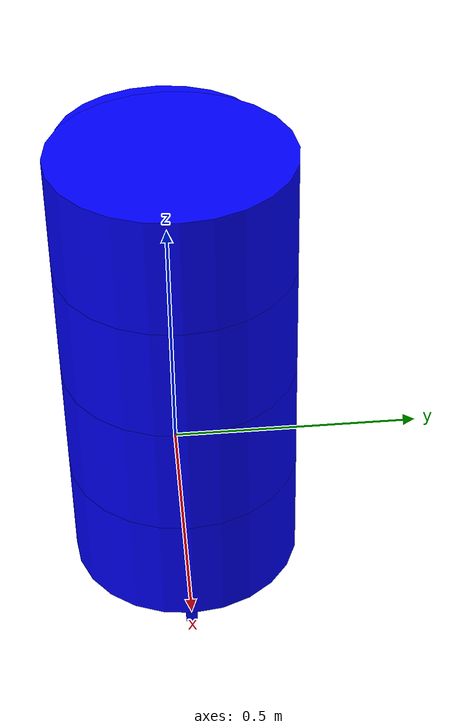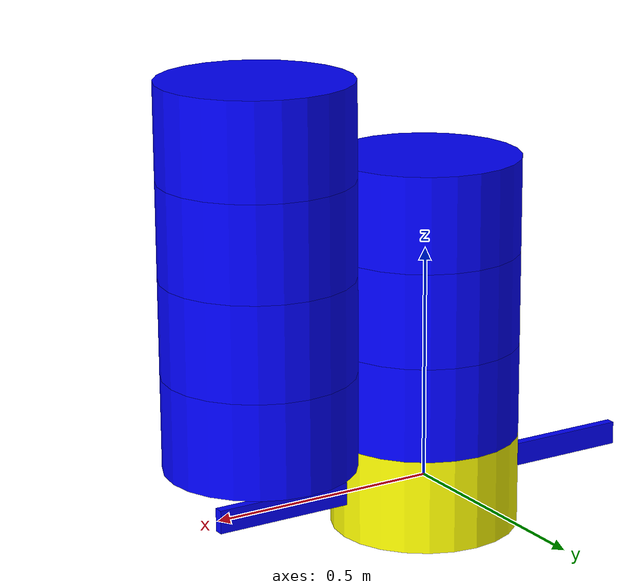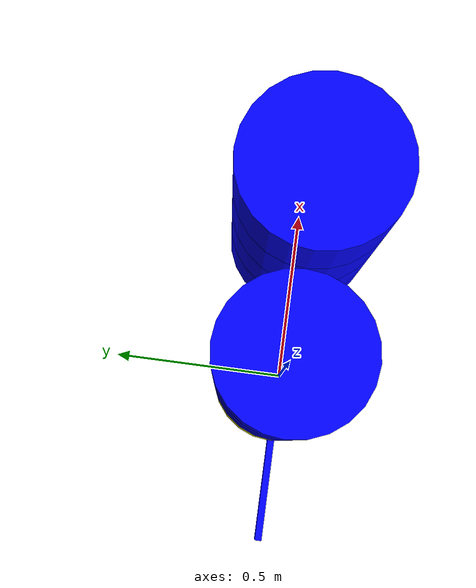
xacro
<?xml version="1.0"?>

<robot name="kukaibra800" xmlns:xacro="http://wiki.ros.org/xacro">
    <xacro:include filename="$(find ros_kuka)/urdf/kukaibra800macro.xacro" />

			<xacro:kuka_tilt_link name="l0">
			<geometry>
				<box size="1 0.02 0.05"/>
			</geometry>
			<origin xyz="0 0 0" rpy="0 0 0"/>
		</xacro:kuka_tilt_link>

	<xacro:kuka_joint
			name="j0"
			type="prismatic"
			parent="l0"
			child="base_link"
			rangeup ="-0.5"
			rangelow="0.5"
			limit="176"
			velocity="98">
			<origin xyz="0 0 0" />
			<axis xyz="1 0 0"/>
		</xacro:kuka_joint>

	<xacro:base_link_macro
			base_link_name="base_link">
		</xacro:base_link_macro>

		<xacro:kuka_joint
			name="j1"
			type="revolute"
			parent="base_link"
			child="l1"
			rangeup ="+2.96"
			rangelow="-2.96"
			limit="176"
			velocity="98">
			<origin xyz="0 0 0.2" />
			<axis xyz="0 0 1"/>
		</xacro:kuka_joint>

		<xacro:kuka_tilt_link name="l1">
			<geometry>
				<cylinder length="0.2" radius="0.2"/>
			</geometry>
			<origin xyz="0 0 0" rpy="0 0 0"/>
		</xacro:kuka_tilt_link>

		<xacro:kuka_joint
			name="j2"
			type="revolute"
			parent="l1"
			child="l2"
			rangeup ="+2.09"
			rangelow="-2.09"
			limit="176"
			velocity="98">
			<origin xyz="0.4 0 0" />
			<axis xyz="1 0 0"/>
		</xacro:kuka_joint>

		<xacro:kuka_tilt_link name="l2">
			<geometry>
				<cylinder length="0.2" radius="0.2"/>
			</geometry>
			<origin xyz="0 0 0" rpy="0 0 0"/>
		</xacro:kuka_tilt_link>

		<xacro:kuka_joint
			name="j3"
			type="revolute"
			parent="l2"
			child="l3"
			rangeup ="+2.96"
			rangelow="-2.96"
			limit="110"
			velocity="100">
			<origin xyz="0 0 0.2" />
			<axis xyz="0 0 1"/>
		</xacro:kuka_joint>

		<xacro:kuka_tilt_link name="l3">
			<geometry>
				<cylinder length="0.2" radius="0.2"/>
			</geometry>
			<origin xyz="0 0 0" rpy="0 0 0"/>
		</xacro:kuka_tilt_link>

		<xacro:kuka_joint
			name="j4"
			type="revolute"
			parent="l3"
			child="l4"
			rangeup ="+2.09"
			rangelow="-2.09"
			limit="110"
			velocity="130">
			<origin xyz="-0.4 0 0" />
			<axis xyz="1 0 0"/>
		</xacro:kuka_joint>

		<xacro:kuka_tilt_link name="l4">
			<geometry>
				<cylinder length="0.2" radius="0.2"/>
			</geometry>
			<origin xyz="0 0 0" rpy="0 0 0"/>
		</xacro:kuka_tilt_link>

		<xacro:kuka_joint
			name="j5"
			type="revolute"
			parent="l4"
			child="l5"
			rangeup ="+2.96"
			rangelow="-2.96"
			limit="110"
			velocity="140">
			<origin xyz="0 0 0.2" />
			<axis xyz="0 0 1"/>
		</xacro:kuka_joint>

		<xacro:kuka_tilt_link name="l5">
			<geometry>
				<cylinder length="0.2" radius="0.2"/>
			</geometry>
			<origin xyz="0 0 0" rpy="0 0 0"/>
		</xacro:kuka_tilt_link>

		<xacro:kuka_joint
			name="j6"
			type="revolute"
			parent="l5"
			child="l6"
			rangeup ="+2.09"
			rangelow="-2.09"
			limit="40"
			velocity="180">
			<origin xyz="0.4 0 0" />
			<axis xyz="1 0 0"/>
		</xacro:kuka_joint>

		<xacro:kuka_tilt_link name="l6">
			<geometry>
				<cylinder length="0.2" radius="0.2"/>
			</geometry>
			<origin xyz="0 0 0" rpy="0 0 0"/>
		</xacro:kuka_tilt_link>

		<xacro:kuka_joint
			name="j7"
			type="revolute"
			parent="l6"
			child="l7"
			rangeup ="+3.05"
			rangelow="-2.05"
			limit="40"
			velocity="180">
			<origin xyz="0 0 0.2" />
			<axis xyz="0 0 1"/>
		</xacro:kuka_joint>

		<xacro:kuka_tilt_link name="l7">
			<geometry>
				<cylinder length="0.2" radius="0.2"/>
			</geometry>
			<origin xyz="0 0 0" rpy="0 0 0"/>
		</xacro:kuka_tilt_link>

</robot>

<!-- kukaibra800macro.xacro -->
<robot name="kukaibra800" xmlns:xacro="http://wiki.ros.org/xacro">

	<xacro:macro name="base_link_macro" params="base_link_name">
		<link name="${base_link_name}">
			<visual>
				<geometry>
					<cylinder length="0.2" radius="0.2"/>
				</geometry>
				<origin rpy="0 0 0" xyz="0 0 0"/>
					<material name="yellow">
						<color rgba="1 1 0 1"/>
					</material>
			</visual>
			<collision>
				<geometry>
					<cylinder length="0.03" radius="0.2"/>
				</geometry>
				<origin rpy="0 0 0" xyz="0 0 0"/>
			</collision>
			<inertial>
				<mass value="1"/>
					<inertia ixx="1.0" ixy="0.0" ixz="0.0" iyy="1.0" iyz="0.0" izz="1.0"/>
					</inertial>
		</link>
	</xacro:macro>

	<xacro:macro name="kuka_joint" params="name type parent child *origin *axis rangeup rangelow limit velocity">
		<joint name="${name}" type="${type}">
			<parent link="${parent}" />
			<child link="${child}" />
	    <xacro:insert_block name="origin" />
			<xacro:insert_block name="axis" />
	    <limit effort="300" velocity="0.1" lower="-3.14" upper="3.14"/>
	    <dynamics damping="50" friction="1"/>
		</joint>
	</xacro:macro>

	<xacro:macro name="kuka_tilt_link" params="name *geometry *origin">
		<link name="${name}">
			<visual>
				<xacro:insert_block name="geometry" />
				<xacro:insert_block name="origin" />
		    <material name="red">
		      <color rgba="0 0 1 1"/>
		    </material>
		  </visual>
		  <collision>
				<xacro:insert_block name="geometry" />
				<xacro:insert_block name="origin" />
			</collision>
			<inertial>
				<mass value="1"/>
					<inertia ixx="1.0" ixy="0.0" ixz="0.0" iyy="1.0" iyz="0.0" izz="1.0"/>
		  </inertial>
	  </link>
	</xacro:macro>

</robot>
